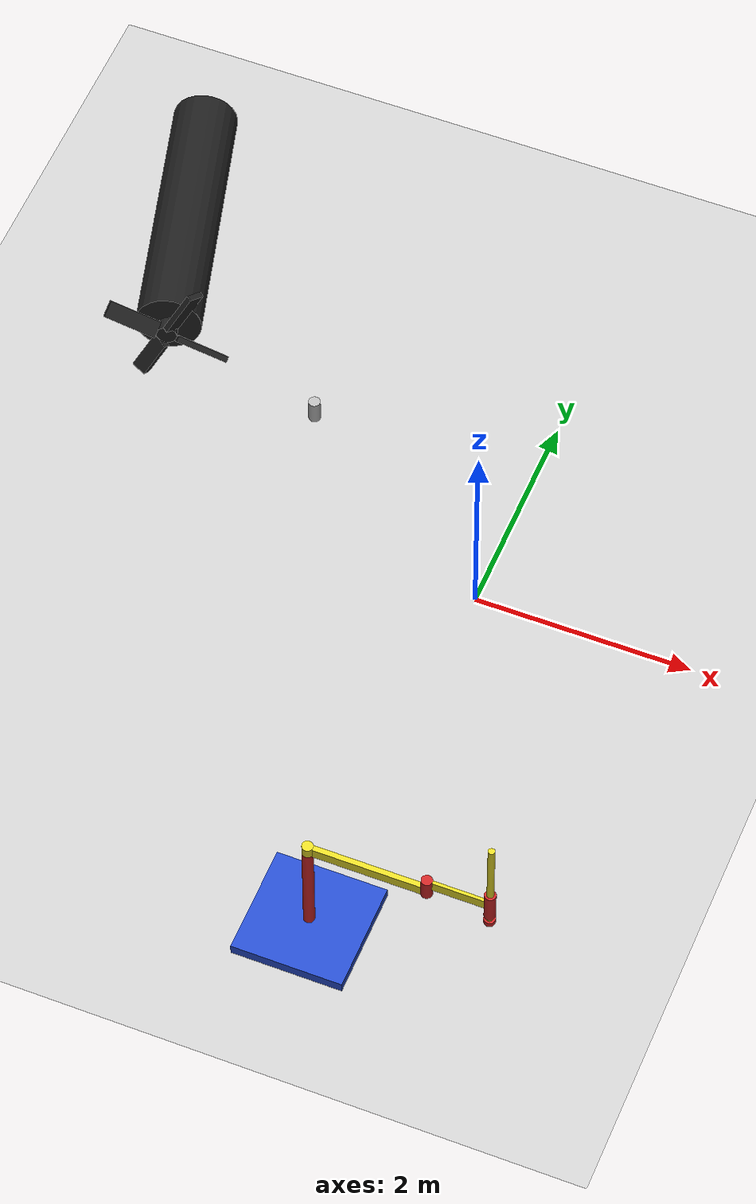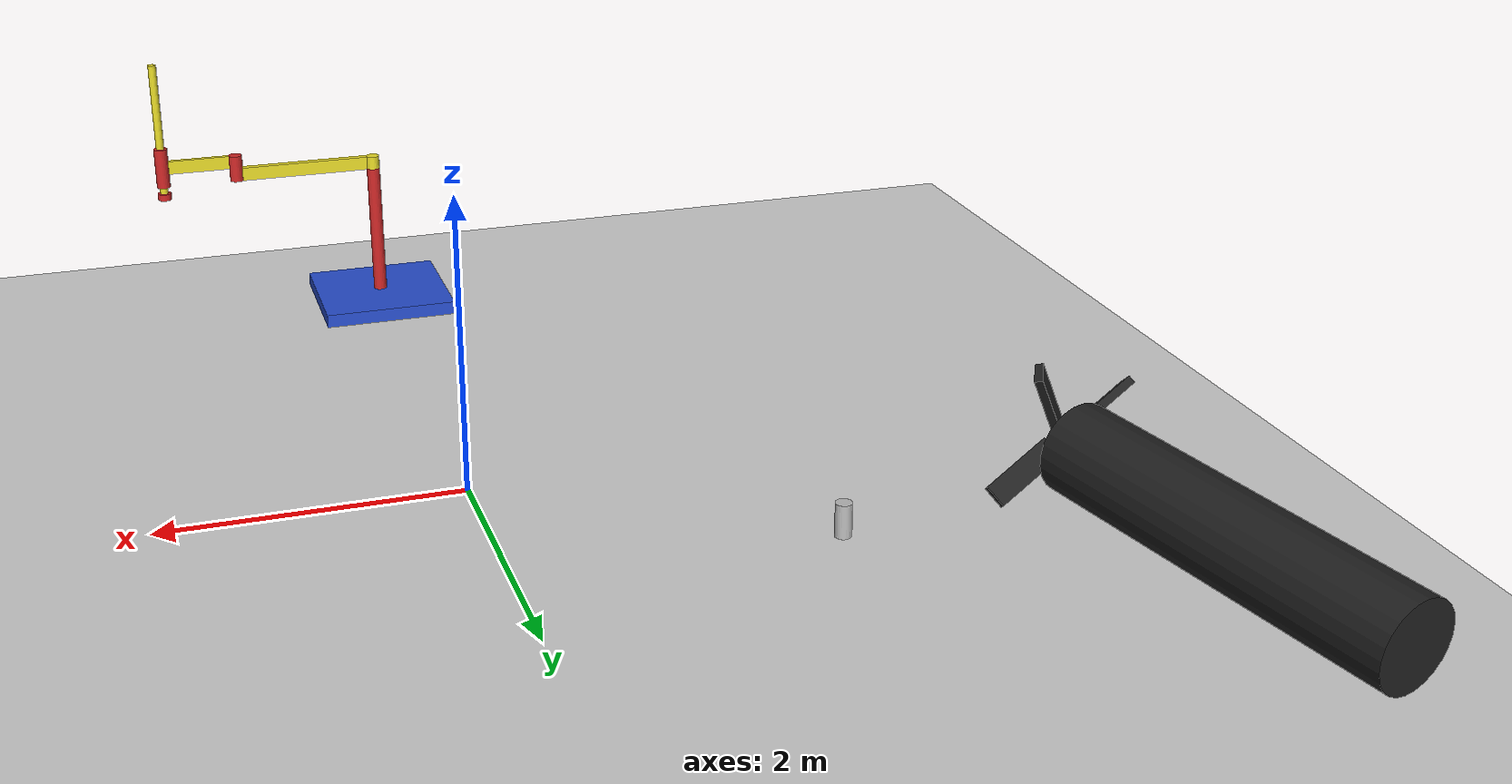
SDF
<sdf version="1.7">
 <world name="default">
  <model name="ground_plane">
   <static>1</static>
   <link name="link">
    <collision name="collision">
     <geometry><plane><normal>0 0 1</normal><size>100 100</size></plane></geometry>
     <surface>
      <contact><collide_bitmask>65535</collide_bitmask></contact>
      <friction><ode><mu>100</mu><mu2>50</mu2></ode></friction>
     </surface>
    </collision>
    <visual name="visual">
     <cast_shadows>0</cast_shadows>
     <geometry><plane><normal>0 0 1</normal><size>100 100</size></plane></geometry>
     <material>
      <script><uri>file://media/materials/scripts/gazebo.material</uri><name>Gazebo/Grey</name></script>
     </material>
    </visual>
   </link>
  </model>
  <model name="beer">
   <link name="link">
    <pose>0 0 0.115 0 -0 0</pose>
    <inertial>
     <mass>0.39</mass>
     <inertia><ixx>0.00058</ixx><ixy>0</ixy><ixz>0</ixz><iyy>0.00058</iyy><iyz>0</iyz><izz>0.00019</izz></inertia>
    </inertial>
    <collision name="collision">
     <geometry><cylinder><radius>0.055</radius><length>0.23</length></cylinder></geometry>
    </collision>
    <visual name="visual">
     <geometry><cylinder><radius>0.055</radius><length>0.23</length></cylinder></geometry>
     <material>
      <script>
       <uri>model://beer/materials/scripts</uri>
       <uri>model://beer/materials/textures</uri>
       <name>Beer/Diffuse</name>
      </script>
     </material>
    </visual>
   </link>
   <pose>-2.07735 1.33042 -7e-06 -1e-06 -0 -4e-06</pose>
  </model>
  <model name="simple_arm">
   <link name="arm_base">
    <inertial>
     <pose>0 0 0.00099 0 -0 0</pose>
     <inertia><ixx>1.11</ixx><ixy>0</ixy><ixz>0</ixz><iyy>100.11</iyy><iyz>0</iyz><izz>1.01</izz></inertia>
     <mass>101</mass>
    </inertial>
    <collision name="arm_base_geom">
     <pose>0 0 0.05 0 -0 0</pose>
     <geometry><box><size>1 1 0.1</size></box></geometry>
    </collision>
    <visual name="arm_base_geom_visual">
     <pose>0 0 0.05 0 -0 0</pose>
     <geometry><box><size>1 1 0.1</size></box></geometry>
     <material>
      <script><uri>file://media/materials/scripts/gazebo.material</uri><name>Gazebo/Blue</name></script>
     </material>
    </visual>
    <collision name="arm_base_geom_arm_trunk">
     <pose>0 0 0.6 0 -0 0</pose>
     <geometry><cylinder><radius>0.05</radius><length>1</length></cylinder></geometry>
    </collision>
    <visual name="arm_base_geom_arm_trunk_visual">
     <pose>0 0 0.6 0 -0 0</pose>
     <geometry><cylinder><radius>0.05</radius><length>1</length></cylinder></geometry>
     <material>
      <script><uri>file://media/materials/scripts/gazebo.material</uri><name>Gazebo/Red</name></script>
     </material>
    </visual>
   </link>
   <link name="arm_shoulder_pan">
    <pose>0 0 1.1 0 -0 0</pose>
    <inertial>
     <pose>0.045455 0 0 0 -0 0</pose>
     <inertia><ixx>0.011</ixx><ixy>0</ixy><ixz>0</ixz><iyy>0.0225</iyy><iyz>0</iyz><izz>0.0135</izz></inertia>
     <mass>1.1</mass>
    </inertial>
    <collision name="arm_shoulder_pan_geom">
     <pose>0 0 0.05 0 -0 0</pose>
     <geometry><cylinder><radius>0.05</radius><length>0.1</length></cylinder></geometry>
    </collision>
    <visual name="arm_shoulder_pan_geom_visual">
     <pose>0 0 0.05 0 -0 0</pose>
     <geometry><cylinder><radius>0.05</radius><length>0.1</length></cylinder></geometry>
     <material>
      <script><uri>file://media/materials/scripts/gazebo.material</uri><name>Gazebo/Yellow</name></script>
     </material>
    </visual>
    <collision name="arm_shoulder_pan_geom_arm_shoulder">
     <pose>0.55 0 0.05 0 -0 0</pose>
     <geometry><box><size>1 0.05 0.1</size></box></geometry>
    </collision>
    <visual name="arm_shoulder_pan_geom_arm_shoulder_visual">
     <pose>0.55 0 0.05 0 -0 0</pose>
     <geometry><box><size>1 0.05 0.1</size></box></geometry>
     <material>
      <script><uri>file://media/materials/scripts/gazebo.material</uri><name>Gazebo/Yellow</name></script>
     </material>
    </visual>
   </link>
   <link name="arm_elbow_pan">
    <pose>1.05 0 1.1 0 -0 0</pose>
    <inertial>
     <pose>0.0875 0 0.083333 0 -0 0</pose>
     <inertia>
      <ixx>0.031</ixx>
      <ixy>0</ixy>
      <ixz>0.005</ixz>
      <iyy>0.07275</iyy>
      <iyz>0</iyz>
      <izz>0.04475</izz>
     </inertia>
     <mass>1.2</mass>
    </inertial>
    <collision name="arm_elbow_pan_geom">
     <pose>0 0 0.1 0 -0 0</pose>
     <geometry><cylinder><radius>0.05</radius><length>0.2</length></cylinder></geometry>
    </collision>
    <visual name="arm_elbow_pan_geom_visual">
     <pose>0 0 0.1 0 -0 0</pose>
     <geometry><cylinder><radius>0.05</radius><length>0.2</length></cylinder></geometry>
     <material>
      <script><uri>file://media/materials/scripts/gazebo.material</uri><name>Gazebo/Red</name></script>
     </material>
    </visual>
    <collision name="arm_elbow_pan_geom_arm_elbow">
     <pose>0.3 0 0.15 0 -0 0</pose>
     <geometry><box><size>0.5 0.03 0.1</size></box></geometry>
    </collision>
    <visual name="arm_elbow_pan_geom_arm_elbow_visual">
     <pose>0.3 0 0.15 0 -0 0</pose>
     <geometry><box><size>0.5 0.03 0.1</size></box></geometry>
     <material>
      <script><uri>file://media/materials/scripts/gazebo.material</uri><name>Gazebo/Yellow</name></script>
     </material>
    </visual>
    <collision name="arm_elbow_pan_geom_arm_wrist">
     <pose>0.55 0 0.15 0 -0 0</pose>
     <geometry><cylinder><radius>0.05</radius><length>0.3</length></cylinder></geometry>
    </collision>
    <visual name="arm_elbow_pan_geom_arm_wrist_visual">
     <pose>0.55 0 0.15 0 -0 0</pose>
     <geometry><cylinder><radius>0.05</radius><length>0.3</length></cylinder></geometry>
     <material>
      <script><uri>file://media/materials/scripts/gazebo.material</uri><name>Gazebo/Red</name></script>
     </material>
    </visual>
   </link>
   <link name="arm_wrist_lift">
    <pose>1.6 0 1.05 0 -0 0</pose>
    <inertial>
     <inertia><ixx>0.01</ixx><ixy>0</ixy><ixz>0</ixz><iyy>0.01</iyy><iyz>0</iyz><izz>0.001</izz></inertia>
     <mass>0.1</mass>
    </inertial>
    <collision name="arm_wrist_lift_geom">
     <pose>0 0 0.5 0 -0 0</pose>
     <geometry><cylinder><radius>0.03</radius><length>1</length></cylinder></geometry>
    </collision>
    <visual name="arm_wrist_lift_geom_visual">
     <pose>0 0 0.5 0 -0 0</pose>
     <geometry><cylinder><radius>0.03</radius><length>1</length></cylinder></geometry>
     <material>
      <script><uri>file://media/materials/scripts/gazebo.material</uri><name>Gazebo/Yellow</name></script>
     </material>
    </visual>
   </link>
   <link name="arm_wrist_roll">
    <pose>1.6 0 1 0 -0 0</pose>
    <inertial>
     <inertia><ixx>0.01</ixx><ixy>0</ixy><ixz>0</ixz><iyy>0.01</iyy><iyz>0</iyz><izz>0.001</izz></inertia>
     <mass>0.1</mass>
    </inertial>
    <collision name="arm_wrist_roll_geom">
     <pose>0 0 0.025 0 -0 0</pose>
     <geometry><cylinder><radius>0.05</radius><length>0.05</length></cylinder></geometry>
    </collision>
    <visual name="arm_wrist_roll_geom_visual">
     <pose>0 0 0.025 0 -0 0</pose>
     <geometry><cylinder><radius>0.05</radius><length>0.05</length></cylinder></geometry>
     <material>
      <script><uri>file://media/materials/scripts/gazebo.material</uri><name>Gazebo/Red</name></script>
     </material>
    </visual>
   </link>
   <joint name="arm_shoulder_pan_joint" type="revolute">
    <parent>arm_base</parent>
    <child>arm_shoulder_pan</child>
    <axis>
     <dynamics>
      <damping>1</damping>
      <friction>0</friction>
      <spring_reference>0</spring_reference>
      <spring_stiffness>0</spring_stiffness>
     </dynamics>
     <xyz expressed_in="__model__">0 0 1</xyz>
     <limit><lower>-1e+16</lower><upper>1e+16</upper></limit>
    </axis>
   </joint>
   <joint name="arm_elbow_pan_joint" type="revolute">
    <parent>arm_shoulder_pan</parent>
    <child>arm_elbow_pan</child>
    <axis>
     <dynamics>
      <damping>1</damping>
      <friction>0</friction>
      <spring_reference>0</spring_reference>
      <spring_stiffness>0</spring_stiffness>
     </dynamics>
     <xyz expressed_in="__model__">0 0 1</xyz>
     <limit><lower>-1e+16</lower><upper>1e+16</upper></limit>
    </axis>
   </joint>
   <joint name="arm_wrist_lift_joint" type="prismatic">
    <parent>arm_elbow_pan</parent>
    <child>arm_wrist_lift</child>
    <axis>
     <dynamics>
      <damping>1</damping>
      <friction>0</friction>
      <spring_reference>0</spring_reference>
      <spring_stiffness>0</spring_stiffness>
     </dynamics>
     <limit><lower>-0.8</lower><upper>0.1</upper></limit>
     <xyz expressed_in="__model__">0 0 1</xyz>
    </axis>
   </joint>
   <joint name="arm_wrist_roll_joint" type="revolute">
    <parent>arm_wrist_lift</parent>
    <child>arm_wrist_roll</child>
    <axis>
     <dynamics>
      <damping>1</damping>
      <friction>0</friction>
      <spring_reference>0</spring_reference>
      <spring_stiffness>0</spring_stiffness>
     </dynamics>
     <limit><lower>-2.99999</lower><upper>2.99999</upper></limit>
     <xyz expressed_in="__model__">0 0 1</xyz>
    </axis>
   </joint>
   <pose>-0.062985 -3.62807 -0 0 0 -0.000714</pose>
  </model>
  <model name="submarine_sinking">
   <pose>-3.62012 1.70268 0.44906 1.43345 -1.09348 0.401546</pose>
   <link name="body">
    <pose>0 0 -1.07935 0 -0 0</pose>
    <inertial>
     <mass>1102.7</mass>
     <inertia><ixx>645.998</ixx><ixy>0</ixy><ixz>0</ixz><iyy>645.998</iyy><iyz>0</iyz><izz>49.6215</izz></inertia>
    </inertial>
    <visual name="body_visual">
     <geometry><cylinder><radius>0.3</radius><length>2.6</length></cylinder></geometry>
     <material>
      <script><uri>file://media/materials/scripts/gazebo.material</uri><name>Gazebo/Black</name></script>
     </material>
    </visual>
    <collision name="body_collision">
     <geometry><cylinder><radius>0.3</radius><length>2.6</length></cylinder></geometry>
    </collision>
    <visual name="spacer_visual">
     <pose>0 0 1.37855 0 -0 0</pose>
     <geometry><cylinder><radius>0.0933402</radius><length>0.127211</length></cylinder></geometry>
     <material>
      <script><uri>file://media/materials/scripts/gazebo.material</uri><name>Gazebo/Black</name></script>
     </material>
    </visual>
   </link>
   <link name="propeller">
    <pose>0 0 0.3455 3.14159 -0 0</pose>
    <inertial>
     <mass>25.2312</mass>
     <inertia><ixx>0.531907</ixx><ixy>0</ixy><ixz>0</ixz><iyy>0.531907</iyy><iyz>0</iyz><izz>1.0513</izz></inertia>
    </inertial>
    <visual name="blade1_visual">
     <pose>0.34334 0 0 0.785398 -0 0</pose>
     <geometry><box><size>0.5 0.154178 0.05455</size></box></geometry>
     <material>
      <script><uri>file://media/materials/scripts/gazebo.material</uri><name>Gazebo/Black</name></script>
     </material>
    </visual>
    <collision name="blade1_collision">
     <pose>0.34334 0 0 0.785398 -0 0</pose>
     <geometry><box><size>0.5 0.154178 0.05455</size></box></geometry>
    </collision>
    <visual name="blade2_visual">
     <pose>0 0.34334 0 0.785398 0 1.5708</pose>
     <geometry><box><size>0.5 0.154178 0.05455</size></box></geometry>
     <material>
      <script><uri>file://media/materials/scripts/gazebo.material</uri><name>Gazebo/Black</name></script>
     </material>
    </visual>
    <collision name="blade2_collision">
     <pose>0 0.34334 0 0.785398 0 1.5708</pose>
     <geometry><box><size>0.5 0.154178 0.05455</size></box></geometry>
    </collision>
    <visual name="blade3_visual">
     <pose>-0.34334 -0 0 -0.785398 0 0</pose>
     <geometry><box><size>0.5 0.154178 0.05455</size></box></geometry>
     <material>
      <script><uri>file://media/materials/scripts/gazebo.material</uri><name>Gazebo/Black</name></script>
     </material>
    </visual>
    <collision name="blade3_collision">
     <pose>-0.34334 -0 0 -0.785398 0 0</pose>
     <geometry><box><size>0.5 0.154178 0.05455</size></box></geometry>
    </collision>
    <visual name="blade4_visual">
     <pose>-0 -0.34334 0 -0.785398 -0 1.5708</pose>
     <geometry><box><size>0.5 0.154178 0.05455</size></box></geometry>
     <material>
      <script><uri>file://media/materials/scripts/gazebo.material</uri><name>Gazebo/Black</name></script>
     </material>
    </visual>
    <collision name="blade4_collision">
     <pose>-0 -0.34334 0 -0.785398 -0 1.5708</pose>
     <geometry><box><size>0.5 0.154178 0.05455</size></box></geometry>
    </collision>
   </link>
   <joint name="spinning_joint" type="revolute">
    <parent>body</parent>
    <child>propeller</child>
    <axis>
     <xyz expressed_in="__model__">0 0 1</xyz>
     <limit><lower>-1e+12</lower><upper>1e+12</upper><effort>-1</effort><velocity>-1</velocity></limit>
     <dynamics><spring_reference>0</spring_reference><spring_stiffness>0</spring_stiffness></dynamics>
    </axis>
   </joint>
   <plugin name="buoyancy" filename="libBuoyancyPlugin.so"><fluid_density>999.1026</fluid_density></plugin>
  </model>
 </world>
</sdf>
